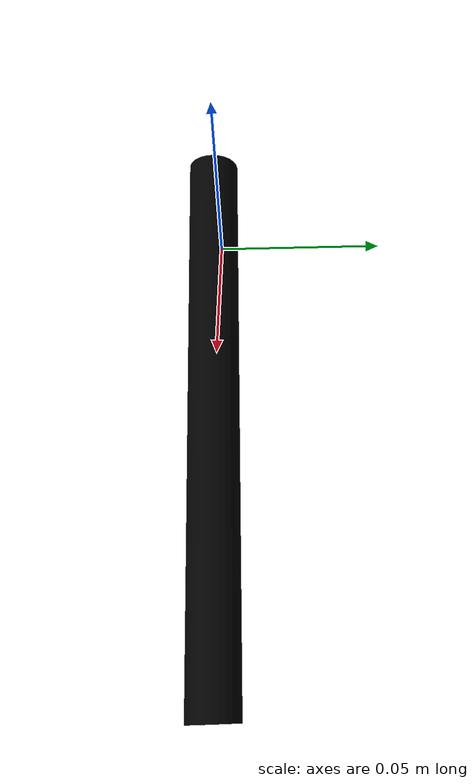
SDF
<?xml version='1.0' encoding='utf-8'?>
<!-- https://stackoverflow.com/questions/79470924/does-drake-have-an-equivalent-of-mujoco-mocap-bodies -->
<sdf version="1.9" xmlns:drake="http://drake.mit.edu">
<model name="rope_holder">
    <pose>0 0 0 0 0 0</pose>
    <joint name="translate_joint_x" type="prismatic">
      <parent>world</parent>
      <child>false_0</child>
      <axis>
        <xyz expressed_in="__model__">1 0 0</xyz>
      </axis>
      <drake:controller_gains p='10000000.0' d='100000.0' />
    </joint>
    <link name="false_0">
      <inertial>
        <inertia>
          <ixx>0.0001</ixx>
          <ixy>0</ixy>
          <ixz>0</ixz>
          <iyy>0.0001</iyy>
          <iyz>0</iyz>
          <izz>0.0001</izz>
        </inertia>
        <mass>0.09</mass>
      </inertial>
    </link>
    <joint name="translate_joint_y" type="prismatic">
      <parent>false_0</parent>
      <child>false_1</child>
      <axis>
        <xyz expressed_in="__model__">0 1 0</xyz>
      </axis>
      <drake:controller_gains p='10000000.0' d='100000.0' />
    </joint>
    <link name="false_1">
      <inertial>
        <inertia>
          <ixx>0.0001</ixx>
          <ixy>0</ixy>
          <ixz>0</ixz>
          <iyy>0.0001</iyy>
          <iyz>0</iyz>
          <izz>0.0001</izz>
        </inertia>
        <mass>0.09</mass>
      </inertial>
    </link>
    <joint name="translate_joint_z" type="prismatic">
      <parent>false_1</parent>
      <child>false_2</child>
      <axis>
        <xyz expressed_in="__model__">0 0 1</xyz>
      </axis>
      <drake:controller_gains p='10000000.0' d='100000.0' />
    </joint>
    <link name="false_2">
      <inertial>
        <inertia>
          <ixx>0.0001</ixx>
          <ixy>0</ixy>
          <ixz>0</ixz>
          <iyy>0.0001</iyy>
          <iyz>0</iyz>
          <izz>0.0001</izz>
        </inertia>
        <mass>0.09</mass>
      </inertial>
    </link>
    <joint name="rotate_joint_u" type="revolute">
      <parent>false_2</parent>
      <child>false_3</child>
      <axis>
        <xyz expressed_in="false_2">0 0 1</xyz>
      </axis>
      <drake:controller_gains p='10000000.0' d='100000.0' />
    </joint>
    <link name="false_3">
      <inertial>
        <inertia>
          <ixx>0.0001</ixx>
          <ixy>0</ixy>
          <ixz>0</ixz>
          <iyy>0.0001</iyy>
          <iyz>0</iyz>
          <izz>0.0001</izz>
        </inertia>
        <mass>0.09</mass>
      </inertial>
    </link>
    <joint name="rotate_joint_v" type="revolute">
      <parent>false_3</parent>
      <child>rope_holder_body</child>
      <axis>
        <xyz expressed_in="false_3">0 -1 0</xyz>
      </axis>
      <drake:controller_gains p='10000000.0' d='100000.0' />
    </joint>

    <link name="rope_holder_body">
      <inertial>
        <inertia>
          <ixx>0.0001</ixx>
          <ixy>0</ixy>
          <ixz>0</ixz>
          <iyy>0.0001</iyy>
          <iyz>0</iyz>
          <izz>0.0001</izz>
        </inertia>
        <mass>0.09</mass>
      </inertial>
      <collision name="rope_holder_body_collision">
        <pose degrees="True" relative_to="rope_holder_body">0.075 0 0 0 90 0</pose>
        <geometry>
          <cylinder>
            <radius>0.00675</radius>
            <length>0.15</length>
          </cylinder>
        </geometry>
      </collision>
      <visual name="rope_holder_body_visual">
      <pose degrees="True" relative_to="rope_holder_body">0.075 0 0 0 90 0</pose>
        <geometry>
          <cylinder>
            <radius>0.00675</radius>
            <length>0.15</length>
          </cylinder>
        </geometry>
        <material>
          <diffuse>0 0 0 1</diffuse>
        </material>
      </visual>
    </link>
    <frame name="rope_holder_center" attached_to="rope_holder_body">
      <pose degrees="True" relative_to="rope_holder_body">0 0 0.02 0 0 0</pose>
    </frame>
    <frame name="rope_holder_tip" attached_to="rope_holder_body">
      <pose degrees="True">0.15 0 0 0 0 0</pose>
    </frame>
    <frame name="rope_start_frame" attached_to="rope_holder_body">
      <pose degrees="True">0.14 0 0 0 0 0</pose>
    </frame>
  </model>
</sdf>
